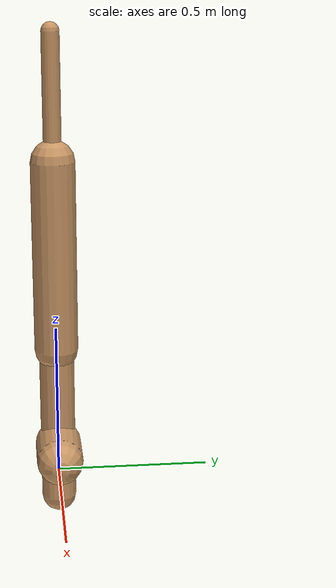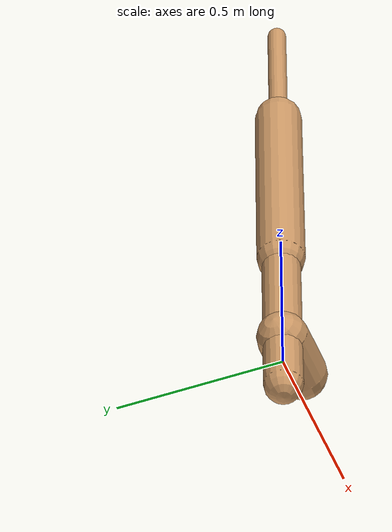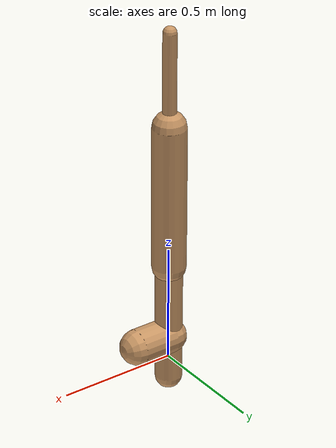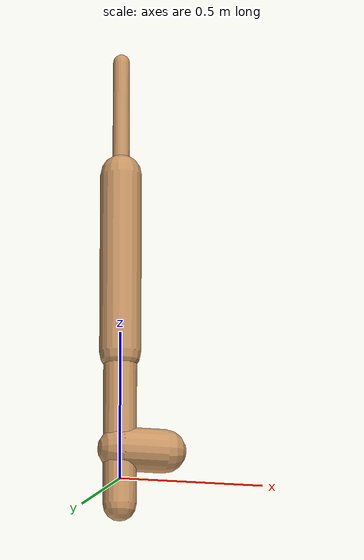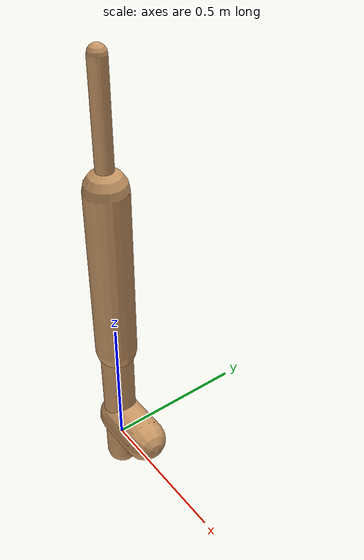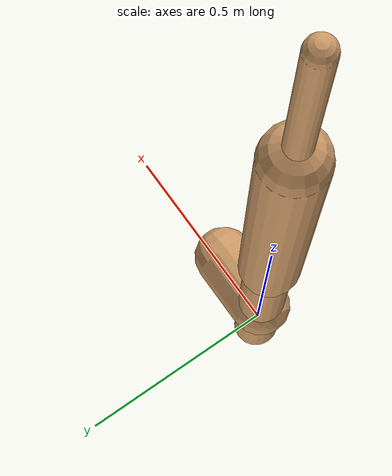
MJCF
<mujoco model="walker2d">
  <compiler angle="degree" coordinate="global" inertiafromgeom="true" />
  <default>
    <joint armature="0.01" damping=".1" limited="true" />
    <geom conaffinity="0" condim="3" contype="1" density="1000" friction="0.8 .1 .1" rgba="0.8 0.6 .4 1" />
  </default>
  <option integrator="RK4" timestep="0.002" />
  <worldbody>

    <body name="torso" pos="0 0 0.35786644964707465">
      <joint armature="0" axis="1 0 0" damping="0" limited="false" name="ignorex" pos="0 0 0" stiffness="0" type="slide" />
      <joint armature="0" axis="0 0 1" damping="0" limited="false" name="ignorez" pos="0 0 0" ref="1.25" stiffness="0" type="slide" />
      <joint armature="0" axis="0 1 0" damping="0" limited="false" name="ignorey" pos="0 0 0" stiffness="0" type="hinge" />
      <geom fromto="0 0 1.45 0 0 1.05" name="torso_geom" size="0.028468829853569966" type="capsule" />
      <body name="thigh">
        <joint axis="0 -1 0" name="thigh_joint" pos="0 0 1.05" range="-150 0" type="hinge" />
        <geom fromto="0.0 0.0 1.05 0.0 0.0 0.43048431332506987" name="thigh_geom" size="0.07061615368002126" type="capsule" />
        <body name="leg" pos="0.0 0.0 -0.1695156866749301">
          <joint axis="0 -1 0" name="leg_joint" pos="0 0 0.6" range="-150 0" type="hinge" />
          <geom fromto="0.0 0.0 0.6 0.0 0.0 -0.08835076297214453" name="leg_geom" size="0.056492922944017004" type="capsule" />
          <body name="foot" pos="0.0 0.0 -0.18835076297214454">
            <joint axis="0 -1 0" name="foot_joint" pos="0 0 0.1" range="-45 45" type="hinge" />
            <geom fromto="0.0 0.0 0.1 0.15367565989750945 0.0 0.1" name="foot_geom" size="0.07468463146728722" type="capsule" />
          </body>
        </body>
      </body>

      <body name="thigh_left">
        <joint axis="0 -1 0" name="thigh_left_joint" pos="0 0 1.05" range="-150 0" type="hinge" />
        <geom fromto="0.0 0.0 1.05 0.0 0.0 0.43048431332506987" name="thigh_left_geom" rgba=".7 .3 .6 1" size="0.07061615368002126" type="capsule" />
        <body name="leg_left" pos="0.0 0.0 -0.1695156866749301">
          <joint axis="0 -1 0" name="leg_left_joint" pos="0 0 0.6" range="-150 0" type="hinge" />
          <geom fromto="0.0 0.0 0.6 0.0 0.0 -0.08835076297214453" name="leg_left_geom" rgba=".7 .3 .6 1" size="0.056492922944017004" type="capsule" />
          <body name="foot_left" pos="0.0 0.0 -0.18835076297214454">
            <joint axis="0 -1 0" name="foot_left_joint" pos="0 0 0.1" range="-45 45" type="hinge" />
            <geom fromto="0.0 0.0 0.1 0.15367565989750945 0.0 0.1" name="foot_left_geom" rgba=".7 .3 .6 1" size="0.07468463146728722" type="capsule" />
          </body>
        </body>
      </body>
    </body>
  </worldbody>
  <actuator>

    <motor ctrllimited="true" ctrlrange="-1.0 1.0" gear="100" joint="thigh_joint" />
    <motor ctrllimited="true" ctrlrange="-1.0 1.0" gear="100" joint="leg_joint" />
    <motor ctrllimited="true" ctrlrange="-1.0 1.0" gear="100" joint="foot_joint" />
    <motor ctrllimited="true" ctrlrange="-1.0 1.0" gear="100" joint="thigh_left_joint" />
    <motor ctrllimited="true" ctrlrange="-1.0 1.0" gear="100" joint="leg_left_joint" />
    <motor ctrllimited="true" ctrlrange="-1.0 1.0" gear="100" joint="foot_left_joint" />

  </actuator>
</mujoco>
